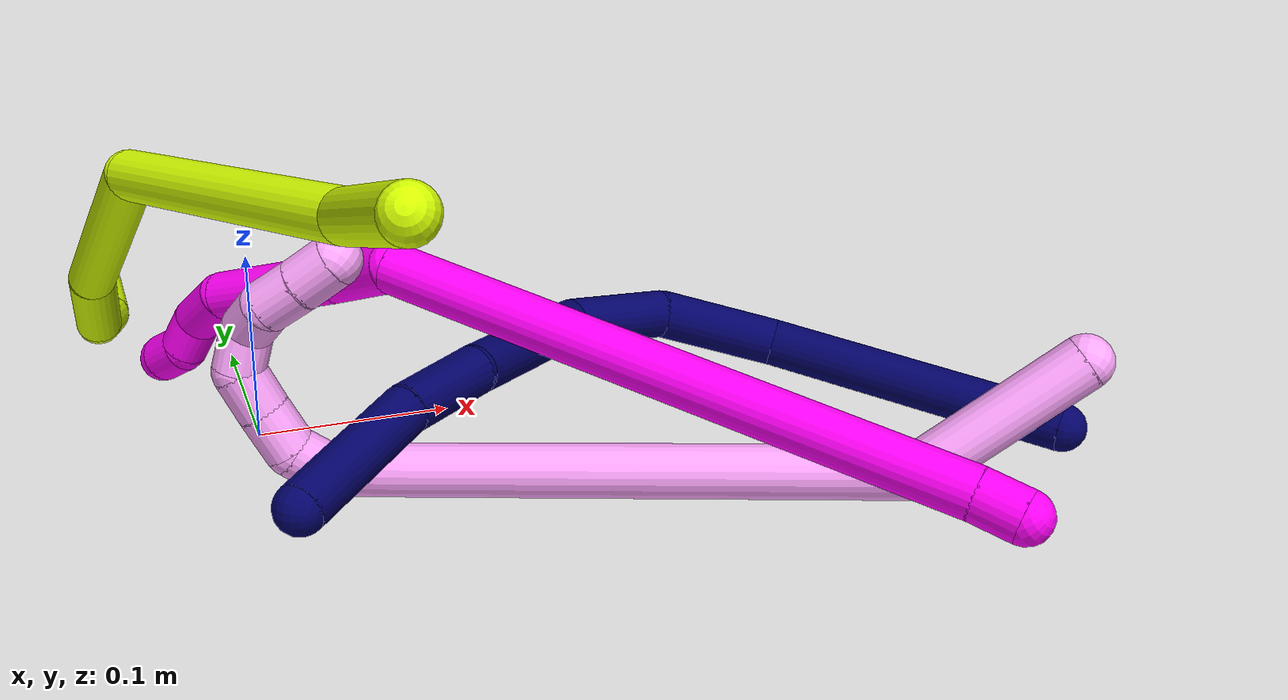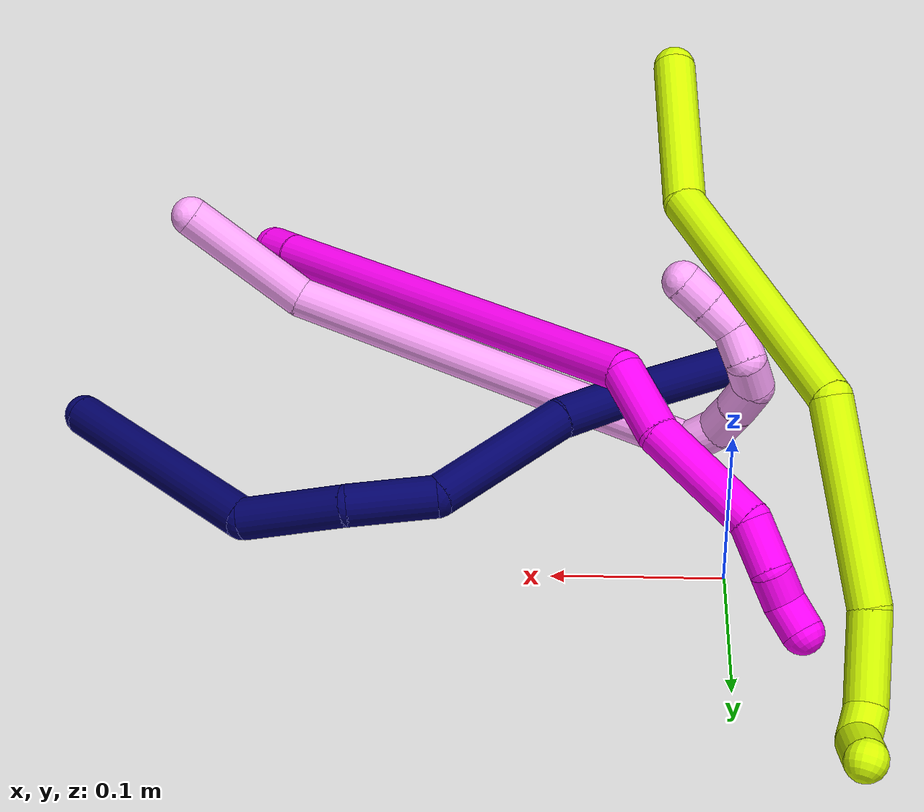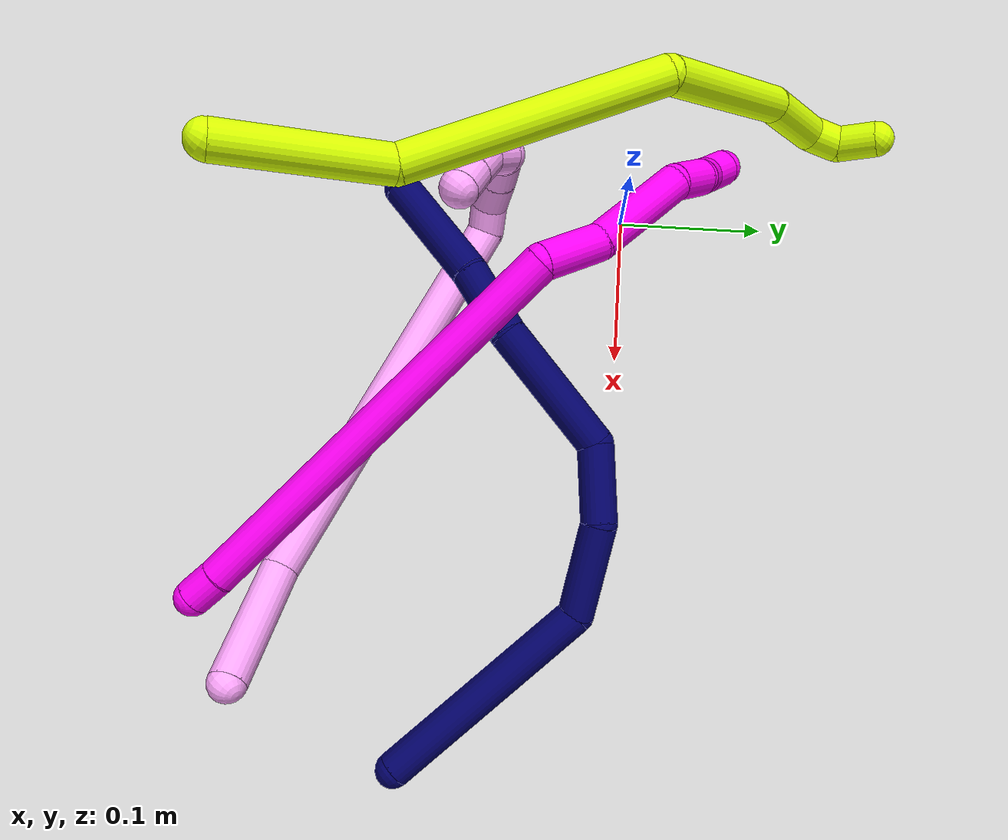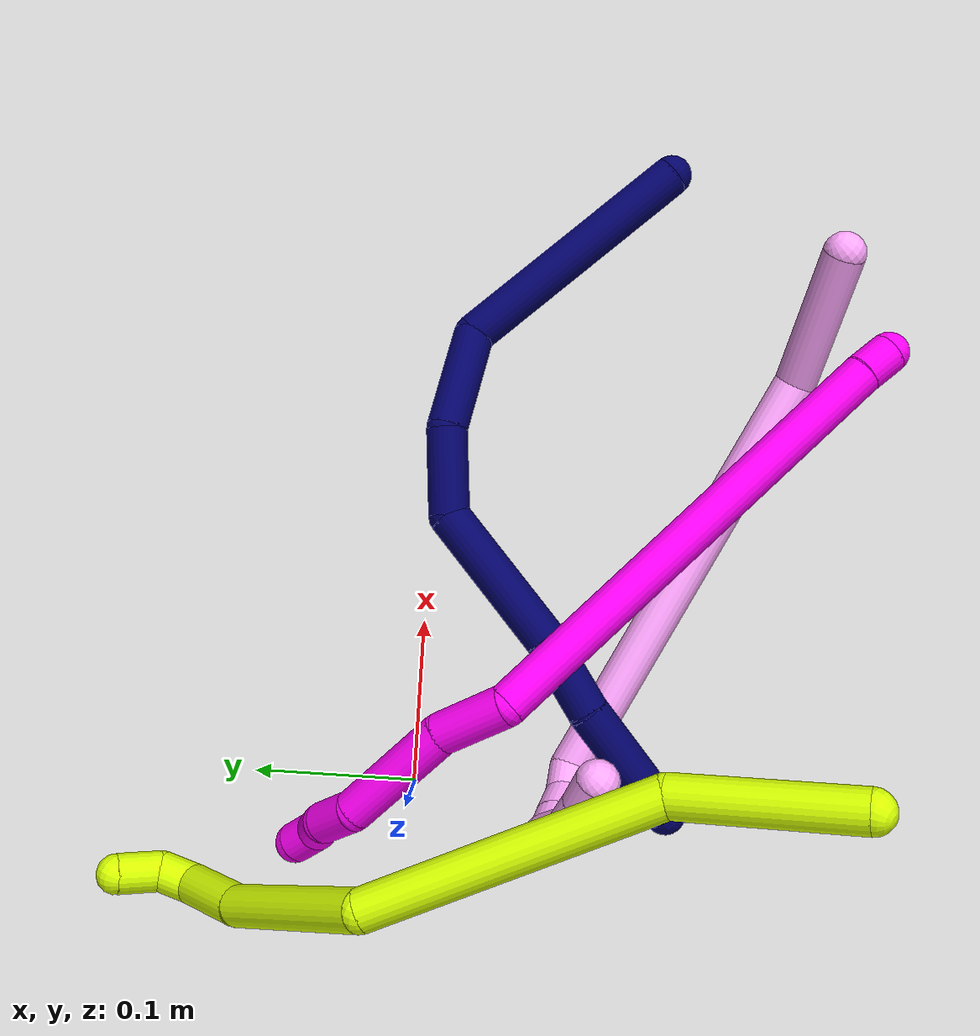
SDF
<sdf version="1.7">
 <world name="default">
  <model name="photoneo_s_sensor">
   <static>1</static>
   <pose>0 0 2 1.57079 1.57079 3.14159</pose>
   <link name="link">
    <inertial><mass>0.1</mass></inertial>
    <sensor name="sensor" type="depth">
     <update_rate>30</update_rate>
     <camera>
      <horizontal_fov>1.22</horizontal_fov>
      <image><width>1920</width><height>1200</height><format>B8G8R8</format></image>
      <clip><near>0.1</near><far>4</far></clip>
      <depth_camera><output>points</output></depth_camera>
     </camera>
     <plugin name="camera_plugin" filename="libgazebo_ros_depth_camera.so">
      <baseline>0.2</baseline>
      <alwaysOn>1</alwaysOn>
      <updateRate>0.0</updateRate>
      <cameraName>camera_ir</cameraName>
      <imageTopicName>/camera/color/image_raw</imageTopicName>
      <cameraInfoTopicName>/camera/color/camera_info</cameraInfoTopicName>
      <depthImageTopicName>/camera/depth/image_raw</depthImageTopicName>
      <depthImageCameraInfoTopicName>/camera/depth/camera_info</depthImageCameraInfoTopicName>
      <pointCloudTopicName>/camera/depth/points</pointCloudTopicName>
      <frameName>fr_optical</frameName>
      <pointCloudCutoff>0.1</pointCloudCutoff>
      <pointCloudCutoffMax>2.0</pointCloudCutoffMax>
      <distortionK1>0</distortionK1>
      <distortionK2>0</distortionK2>
      <distortionK3>0</distortionK3>
      <distortionT1>0</distortionT1>
      <distortionT2>0</distortionT2>
      <CxPrime>0</CxPrime>
      <Cx>0</Cx>
      <Cy>0</Cy>
      <focalLength>0</focalLength>
      <hackBaseline>0</hackBaseline>
     </plugin>
    </sensor>
   </link>
  </model>
  <model name="bin">
   <static>1</static>
   <link name="bottom">
    <collision name="collision-bottom">
     <pose>0 0 -0.01 0 -0 0</pose>
     <geometry><box><size>0.8 0.6 0.02</size></box></geometry>
     <surface>
      <friction><ode><mu>100</mu><mu2>100</mu2></ode></friction>
      <contact><collide_bitmask>65535</collide_bitmask></contact>
     </surface>
    </collision>
   </link>
   <link name="west_wall">
    <collision name="collision-west_wall">
     <pose>-0.41 0 0.1 0 -0 0</pose>
     <geometry><box><size>0.02 0.6 0.2</size></box></geometry>
     <surface>
      <friction><ode><mu>100</mu><mu2>100</mu2></ode></friction>
      <contact><collide_bitmask>65535</collide_bitmask></contact>
     </surface>
    </collision>
   </link>
   <link name="east_wall">
    <collision name="collision-east_wall">
     <pose>0.41 0 0.1 0 -0 0</pose>
     <geometry><box><size>0.02 0.6 0.2</size></box></geometry>
     <surface>
      <friction><ode><mu>100</mu><mu2>100</mu2></ode></friction>
      <contact><collide_bitmask>65535</collide_bitmask></contact>
     </surface>
    </collision>
   </link>
   <link name="south_wall">
    <collision name="collision-south_wall">
     <pose>0 -0.31 0.1 0 -0 0</pose>
     <geometry><box><size>0.8 0.02 0.2</size></box></geometry>
     <surface>
      <friction><ode><mu>100</mu><mu2>100</mu2></ode></friction>
      <contact><collide_bitmask>65535</collide_bitmask></contact>
     </surface>
    </collision>
   </link>
   <link name="north_wall">
    <collision name="collision-north_wall">
     <pose>0 0.31 0.1 0 -0 0</pose>
     <geometry><box><size>0.8 0.02 0.2</size></box></geometry>
     <surface>
      <friction><ode><mu>100</mu><mu2>100</mu2></ode></friction>
      <contact><collide_bitmask>65535</collide_bitmask></contact>
     </surface>
    </collision>
   </link>
  </model>
  <model name="4">
   <static>0</static>
   <link name="4">
    <collision name="collision-cylinder-e_1_1_4">
     <pose>-0.004775 0.033525 -0.026576 -2.24107 -0.111151 0.229174</pose>
     <geometry><cylinder><radius>0.0125</radius><length>0.086093</length></cylinder></geometry>
     <surface>
      <friction><ode><mu>1.16</mu><mu2>1.16</mu2><slip1>0</slip1><slip2>0</slip2></ode></friction>
      <contact><ode><kp>1e+06</kp><kd>1</kd><max_vel>0</max_vel><min_depth>0.001</min_depth></ode></contact>
     </surface>
    </collision>
    <visual name="visual-cylinder-e_1_1_4">
     <pose>-0.004775 0.033525 -0.026576 -2.24107 -0.111151 0.229174</pose>
     <geometry><cylinder><radius>0.0125</radius><length>0.086093</length></cylinder></geometry>
     <material><ambient>1 0.65098 0.996078 1</ambient></material>
    </visual>
    <collision name="collision-cylinder-e_2_4_5">
     <pose>-0.085385 0.172377 -0.087226 -1.88369 -0.600622 0.804871</pose>
     <geometry><cylinder><radius>0.0125</radius><length>0.268371</length></cylinder></geometry>
     <surface>
      <friction><ode><mu>1.16</mu><mu2>1.16</mu2><slip1>0</slip1><slip2>0</slip2></ode></friction>
      <contact><ode><kp>1e+06</kp><kd>1</kd><max_vel>0</max_vel><min_depth>0.001</min_depth></ode></contact>
     </surface>
    </collision>
    <visual name="visual-cylinder-e_2_4_5">
     <pose>-0.085385 0.172377 -0.087226 -1.88369 -0.600622 0.804871</pose>
     <geometry><cylinder><radius>0.0125</radius><length>0.268371</length></cylinder></geometry>
     <material><ambient>1 0.65098 0.996078 1</ambient></material>
    </visual>
    <collision name="collision-cylinder-e_3_5_6">
     <pose>-0.171091 0.279448 -0.122405 -2.13455 -1.36452 1.94986</pose>
     <geometry><cylinder><radius>0.0125</radius><length>0.020167</length></cylinder></geometry>
     <surface>
      <friction><ode><mu>1.16</mu><mu2>1.16</mu2><slip1>0</slip1><slip2>0</slip2></ode></friction>
      <contact><ode><kp>1e+06</kp><kd>1</kd><max_vel>0</max_vel><min_depth>0.001</min_depth></ode></contact>
     </surface>
    </collision>
    <visual name="visual-cylinder-e_3_5_6">
     <pose>-0.171091 0.279448 -0.122405 -2.13455 -1.36452 1.94986</pose>
     <geometry><cylinder><radius>0.0125</radius><length>0.020167</length></cylinder></geometry>
     <material><ambient>1 0.65098 0.996078 1</ambient></material>
    </visual>
    <collision name="collision-cylinder-e_4_6_7">
     <pose>-0.191858 0.281121 -0.120037 0.021175 -1.26235 -0.015478</pose>
     <geometry><cylinder><radius>0.0125</radius><length>0.022875</length></cylinder></geometry>
     <surface>
      <friction><ode><mu>1.16</mu><mu2>1.16</mu2><slip1>0</slip1><slip2>0</slip2></ode></friction>
      <contact><ode><kp>1e+06</kp><kd>1</kd><max_vel>0</max_vel><min_depth>0.001</min_depth></ode></contact>
     </surface>
    </collision>
    <visual name="visual-cylinder-e_4_6_7">
     <pose>-0.191858 0.281121 -0.120037 0.021175 -1.26235 -0.015478</pose>
     <geometry><cylinder><radius>0.0125</radius><length>0.022875</length></cylinder></geometry>
     <material><ambient>1 0.65098 0.996078 1</ambient></material>
    </visual>
    <collision name="collision-cylinder-e_5_7_8">
     <pose>-0.213172 0.280173 -0.113319 0.26307 -1.25856 -0.192039</pose>
     <geometry><cylinder><radius>0.0125</radius><length>0.021891</length></cylinder></geometry>
     <surface>
      <friction><ode><mu>1.16</mu><mu2>1.16</mu2><slip1>0</slip1><slip2>0</slip2></ode></friction>
      <contact><ode><kp>1e+06</kp><kd>1</kd><max_vel>0</max_vel><min_depth>0.001</min_depth></ode></contact>
     </surface>
    </collision>
    <visual name="visual-cylinder-e_5_7_8">
     <pose>-0.213172 0.280173 -0.113319 0.26307 -1.25856 -0.192039</pose>
     <geometry><cylinder><radius>0.0125</radius><length>0.021891</length></cylinder></geometry>
     <material><ambient>1 0.65098 0.996078 1</ambient></material>
    </visual>
    <collision name="collision-cylinder-e_6_8_9">
     <pose>-0.228829 0.274072 -0.103312 0.658063 -0.550118 -0.192126</pose>
     <geometry><cylinder><radius>0.0125</radius><length>0.020047</length></cylinder></geometry>
     <surface>
      <friction><ode><mu>1.16</mu><mu2>1.16</mu2><slip1>0</slip1><slip2>0</slip2></ode></friction>
      <contact><ode><kp>1e+06</kp><kd>1</kd><max_vel>0</max_vel><min_depth>0.001</min_depth></ode></contact>
     </surface>
    </collision>
    <visual name="visual-cylinder-e_6_8_9">
     <pose>-0.228829 0.274072 -0.103312 0.658063 -0.550118 -0.192126</pose>
     <geometry><cylinder><radius>0.0125</radius><length>0.020047</length></cylinder></geometry>
     <material><ambient>1 0.65098 0.996078 1</ambient></material>
    </visual>
    <collision name="collision-cylinder-e_7_9_10">
     <pose>-0.236751 0.259312 -0.094807 1.3898 -0.269882 -0.225392</pose>
     <geometry><cylinder><radius>0.0125</radius><length>0.020115</length></cylinder></geometry>
     <surface>
      <friction><ode><mu>1.16</mu><mu2>1.16</mu2><slip1>0</slip1><slip2>0</slip2></ode></friction>
      <contact><ode><kp>1e+06</kp><kd>1</kd><max_vel>0</max_vel><min_depth>0.001</min_depth></ode></contact>
     </surface>
    </collision>
    <visual name="visual-cylinder-e_7_9_10">
     <pose>-0.236751 0.259312 -0.094807 1.3898 -0.269882 -0.225392</pose>
     <geometry><cylinder><radius>0.0125</radius><length>0.020115</length></cylinder></geometry>
     <material><ambient>1 0.65098 0.996078 1</ambient></material>
    </visual>
    <collision name="collision-cylinder-e_8_10_11">
     <pose>-0.238579 0.240911 -0.088483 1.09404 0.085311 0.051976</pose>
     <geometry><cylinder><radius>0.0125</radius><length>0.020029</length></cylinder></geometry>
     <surface>
      <friction><ode><mu>1.16</mu><mu2>1.16</mu2><slip1>0</slip1><slip2>0</slip2></ode></friction>
      <contact><ode><kp>1e+06</kp><kd>1</kd><max_vel>0</max_vel><min_depth>0.001</min_depth></ode></contact>
     </surface>
    </collision>
    <visual name="visual-cylinder-e_8_10_11">
     <pose>-0.238579 0.240911 -0.088483 1.09404 0.085311 0.051976</pose>
     <geometry><cylinder><radius>0.0125</radius><length>0.020029</length></cylinder></geometry>
     <material><ambient>1 0.65098 0.996078 1</ambient></material>
    </visual>
    <collision name="collision-cylinder-e_9_11_2">
     <pose>-0.236995 0.223281 -0.078727 1.03724 0.071682 0.040923</pose>
     <geometry><cylinder><radius>0.0125</radius><length>0.020412</length></cylinder></geometry>
     <surface>
      <friction><ode><mu>1.16</mu><mu2>1.16</mu2><slip1>0</slip1><slip2>0</slip2></ode></friction>
      <contact><ode><kp>1e+06</kp><kd>1</kd><max_vel>0</max_vel><min_depth>0.001</min_depth></ode></contact>
     </surface>
    </collision>
    <visual name="visual-cylinder-e_9_11_2">
     <pose>-0.236995 0.223281 -0.078727 1.03724 0.071682 0.040923</pose>
     <geometry><cylinder><radius>0.0125</radius><length>0.020412</length></cylinder></geometry>
     <material><ambient>1 0.65098 0.996078 1</ambient></material>
    </visual>
    <collision name="collision-sphere-2">
     <pose>-0.236264 0.214516 -0.07355 0 -0 0</pose>
     <geometry><sphere><radius>0.0125</radius></sphere></geometry>
     <surface>
      <friction><ode><mu>1.16</mu><mu2>1.16</mu2><slip1>0</slip1><slip2>0</slip2></ode></friction>
      <contact><ode><kp>1e+06</kp><kd>1</kd><max_vel>0</max_vel><min_depth>0.001</min_depth></ode></contact>
     </surface>
    </collision>
    <visual name="visual-sphere-2">
     <pose>-0.236264 0.214516 -0.07355 0 -0 0</pose>
     <geometry><sphere><radius>0.0125</radius></sphere></geometry>
     <material><ambient>1 0.65098 0.996078 1</ambient></material>
    </visual>
    <collision name="collision-sphere-11">
     <pose>-0.237725 0.232046 -0.083905 0 -0 0</pose>
     <geometry><sphere><radius>0.0125</radius></sphere></geometry>
     <surface>
      <friction><ode><mu>1.16</mu><mu2>1.16</mu2><slip1>0</slip1><slip2>0</slip2></ode></friction>
      <contact><ode><kp>1e+06</kp><kd>1</kd><max_vel>0</max_vel><min_depth>0.001</min_depth></ode></contact>
     </surface>
    </collision>
    <visual name="visual-sphere-11">
     <pose>-0.237725 0.232046 -0.083905 0 -0 0</pose>
     <geometry><sphere><radius>0.0125</radius></sphere></geometry>
     <material><ambient>1 0.65098 0.996078 1</ambient></material>
    </visual>
    <collision name="collision-sphere-10">
     <pose>-0.239432 0.249777 -0.093062 0 -0 0</pose>
     <geometry><sphere><radius>0.0125</radius></sphere></geometry>
     <surface>
      <friction><ode><mu>1.16</mu><mu2>1.16</mu2><slip1>0</slip1><slip2>0</slip2></ode></friction>
      <contact><ode><kp>1e+06</kp><kd>1</kd><max_vel>0</max_vel><min_depth>0.001</min_depth></ode></contact>
     </surface>
    </collision>
    <visual name="visual-sphere-10">
     <pose>-0.239432 0.249777 -0.093062 0 -0 0</pose>
     <geometry><sphere><radius>0.0125</radius></sphere></geometry>
     <material><ambient>1 0.65098 0.996078 1</ambient></material>
    </visual>
    <collision name="collision-sphere-9">
     <pose>-0.234069 0.268847 -0.096552 0 -0 0</pose>
     <geometry><sphere><radius>0.0125</radius></sphere></geometry>
     <surface>
      <friction><ode><mu>1.16</mu><mu2>1.16</mu2><slip1>0</slip1><slip2>0</slip2></ode></friction>
      <contact><ode><kp>1e+06</kp><kd>1</kd><max_vel>0</max_vel><min_depth>0.001</min_depth></ode></contact>
     </surface>
    </collision>
    <visual name="visual-sphere-9">
     <pose>-0.234069 0.268847 -0.096552 0 -0 0</pose>
     <geometry><sphere><radius>0.0125</radius></sphere></geometry>
     <material><ambient>1 0.65098 0.996078 1</ambient></material>
    </visual>
    <collision name="collision-sphere-4">
     <pose>-0.00955 0.067051 -0.053151 0 -0 0</pose>
     <geometry><sphere><radius>0.0125</radius></sphere></geometry>
     <surface>
      <friction><ode><mu>1.16</mu><mu2>1.16</mu2><slip1>0</slip1><slip2>0</slip2></ode></friction>
      <contact><ode><kp>1e+06</kp><kd>1</kd><max_vel>0</max_vel><min_depth>0.001</min_depth></ode></contact>
     </surface>
    </collision>
    <visual name="visual-sphere-4">
     <pose>-0.00955 0.067051 -0.053151 0 -0 0</pose>
     <geometry><sphere><radius>0.0125</radius></sphere></geometry>
     <material><ambient>1 0.65098 0.996078 1</ambient></material>
    </visual>
    <collision name="collision-sphere-1">
     <geometry><sphere><radius>0.0125</radius></sphere></geometry>
     <surface>
      <friction><ode><mu>1.16</mu><mu2>1.16</mu2><slip1>0</slip1><slip2>0</slip2></ode></friction>
      <contact><ode><kp>1e+06</kp><kd>1</kd><max_vel>0</max_vel><min_depth>0.001</min_depth></ode></contact>
     </surface>
    </collision>
    <visual name="visual-sphere-1">
     <geometry><sphere><radius>0.0125</radius></sphere></geometry>
     <material><ambient>1 0.65098 0.996078 1</ambient></material>
    </visual>
    <collision name="collision-sphere-8">
     <pose>-0.223589 0.279298 -0.110073 0 -0 0</pose>
     <geometry><sphere><radius>0.0125</radius></sphere></geometry>
     <surface>
      <friction><ode><mu>1.16</mu><mu2>1.16</mu2><slip1>0</slip1><slip2>0</slip2></ode></friction>
      <contact><ode><kp>1e+06</kp><kd>1</kd><max_vel>0</max_vel><min_depth>0.001</min_depth></ode></contact>
     </surface>
    </collision>
    <visual name="visual-sphere-8">
     <pose>-0.223589 0.279298 -0.110073 0 -0 0</pose>
     <geometry><sphere><radius>0.0125</radius></sphere></geometry>
     <material><ambient>1 0.65098 0.996078 1</ambient></material>
    </visual>
    <collision name="collision-sphere-5">
     <pose>-0.161221 0.277703 -0.121302 0 -0 0</pose>
     <geometry><sphere><radius>0.0125</radius></sphere></geometry>
     <surface>
      <friction><ode><mu>1.16</mu><mu2>1.16</mu2><slip1>0</slip1><slip2>0</slip2></ode></friction>
      <contact><ode><kp>1e+06</kp><kd>1</kd><max_vel>0</max_vel><min_depth>0.001</min_depth></ode></contact>
     </surface>
    </collision>
    <visual name="visual-sphere-5">
     <pose>-0.161221 0.277703 -0.121302 0 -0 0</pose>
     <geometry><sphere><radius>0.0125</radius></sphere></geometry>
     <material><ambient>1 0.65098 0.996078 1</ambient></material>
    </visual>
    <collision name="collision-sphere-6">
     <pose>-0.180961 0.281194 -0.123509 0 -0 0</pose>
     <geometry><sphere><radius>0.0125</radius></sphere></geometry>
     <surface>
      <friction><ode><mu>1.16</mu><mu2>1.16</mu2><slip1>0</slip1><slip2>0</slip2></ode></friction>
      <contact><ode><kp>1e+06</kp><kd>1</kd><max_vel>0</max_vel><min_depth>0.001</min_depth></ode></contact>
     </surface>
    </collision>
    <visual name="visual-sphere-6">
     <pose>-0.180961 0.281194 -0.123509 0 -0 0</pose>
     <geometry><sphere><radius>0.0125</radius></sphere></geometry>
     <material><ambient>1 0.65098 0.996078 1</ambient></material>
    </visual>
    <collision name="collision-sphere-7">
     <pose>-0.202756 0.281047 -0.116566 0 -0 0</pose>
     <geometry><sphere><radius>0.0125</radius></sphere></geometry>
     <surface>
      <friction><ode><mu>1.16</mu><mu2>1.16</mu2><slip1>0</slip1><slip2>0</slip2></ode></friction>
      <contact><ode><kp>1e+06</kp><kd>1</kd><max_vel>0</max_vel><min_depth>0.001</min_depth></ode></contact>
     </surface>
    </collision>
    <visual name="visual-sphere-7">
     <pose>-0.202756 0.281047 -0.116566 0 -0 0</pose>
     <geometry><sphere><radius>0.0125</radius></sphere></geometry>
     <material><ambient>1 0.65098 0.996078 1</ambient></material>
    </visual>
    <inertial>
     <pose>-0.109595 0.17488 -0.081499 0 -0 0</pose>
     <mass>0.5</mass>
     <inertia>
      <ixx>0.001946</ixx>
      <ixy>0</ixy>
      <ixz>0</ixz>
      <iyy>0.001251</iyy>
      <iyz>0</iyz>
      <izz>-0.000389</izz>
     </inertia>
    </inertial>
   </link>
   <pose>0.326947 -0.227912 0.100222 -0.818842 0.835628 -0.100466</pose>
  </model>
  <model name="7">
   <static>0</static>
   <link name="7">
    <collision name="collision-cylinder-e_1_1_4">
     <pose>-0.004893 0.006458 -0.079387 -3.06042 -0.06136 1.29437</pose>
     <geometry><cylinder><radius>0.0125</radius><length>0.159599</length></cylinder></geometry>
     <surface>
      <friction><ode><mu>1.16</mu><mu2>1.16</mu2><slip1>0</slip1><slip2>0</slip2></ode></friction>
      <contact><ode><kp>1e+06</kp><kd>1</kd><max_vel>0</max_vel><min_depth>0.001</min_depth></ode></contact>
     </surface>
    </collision>
    <visual name="visual-cylinder-e_1_1_4">
     <pose>-0.004893 0.006458 -0.079387 -3.06042 -0.06136 1.29437</pose>
     <geometry><cylinder><radius>0.0125</radius><length>0.159599</length></cylinder></geometry>
     <material><ambient>0.003922 0 0.403922 1</ambient></material>
    </visual>
    <collision name="collision-cylinder-e_2_4_5">
     <pose>-0.030837 0.010778 -0.18361 3.05572 -0.701262 -2.90773</pose>
     <geometry><cylinder><radius>0.0125</radius><length>0.065253</length></cylinder></geometry>
     <surface>
      <friction><ode><mu>1.16</mu><mu2>1.16</mu2><slip1>0</slip1><slip2>0</slip2></ode></friction>
      <contact><ode><kp>1e+06</kp><kd>1</kd><max_vel>0</max_vel><min_depth>0.001</min_depth></ode></contact>
     </surface>
    </collision>
    <visual name="visual-cylinder-e_2_4_5">
     <pose>-0.030837 0.010778 -0.18361 3.05572 -0.701262 -2.90773</pose>
     <geometry><cylinder><radius>0.0125</radius><length>0.065253</length></cylinder></geometry>
     <material><ambient>0.003922 0 0.403922 1</ambient></material>
    </visual>
    <collision name="collision-cylinder-e_3_5_6">
     <pose>-0.070132 -0.001814 -0.224445 2.56282 -0.762209 -1.86349</pose>
     <geometry><cylinder><radius>0.0125</radius><length>0.052845</length></cylinder></geometry>
     <surface>
      <friction><ode><mu>1.16</mu><mu2>1.16</mu2><slip1>0</slip1><slip2>0</slip2></ode></friction>
      <contact><ode><kp>1e+06</kp><kd>1</kd><max_vel>0</max_vel><min_depth>0.001</min_depth></ode></contact>
     </surface>
    </collision>
    <visual name="visual-cylinder-e_3_5_6">
     <pose>-0.070132 -0.001814 -0.224445 2.56282 -0.762209 -1.86349</pose>
     <geometry><cylinder><radius>0.0125</radius><length>0.052845</length></cylinder></geometry>
     <material><ambient>0.003922 0 0.403922 1</ambient></material>
    </visual>
    <collision name="collision-cylinder-e_4_6_7">
     <pose>-0.129335 -0.035337 -0.24126 1.60616 -1.05758 -1.08866</pose>
     <geometry><cylinder><radius>0.0125</radius><length>0.09403</length></cylinder></geometry>
     <surface>
      <friction><ode><mu>1.16</mu><mu2>1.16</mu2><slip1>0</slip1><slip2>0</slip2></ode></friction>
      <contact><ode><kp>1e+06</kp><kd>1</kd><max_vel>0</max_vel><min_depth>0.001</min_depth></ode></contact>
     </surface>
    </collision>
    <visual name="visual-cylinder-e_4_6_7">
     <pose>-0.129335 -0.035337 -0.24126 1.60616 -1.05758 -1.08866</pose>
     <geometry><cylinder><radius>0.0125</radius><length>0.09403</length></cylinder></geometry>
     <material><ambient>0.003922 0 0.403922 1</ambient></material>
    </visual>
    <collision name="collision-cylinder-e_5_7_8">
     <pose>-0.189476 -0.073311 -0.245822 1.81705 -0.895342 -1.10394</pose>
     <geometry><cylinder><radius>0.0125</radius><length>0.049159</length></cylinder></geometry>
     <surface>
      <friction><ode><mu>1.16</mu><mu2>1.16</mu2><slip1>0</slip1><slip2>0</slip2></ode></friction>
      <contact><ode><kp>1e+06</kp><kd>1</kd><max_vel>0</max_vel><min_depth>0.001</min_depth></ode></contact>
     </surface>
    </collision>
    <visual name="visual-cylinder-e_5_7_8">
     <pose>-0.189476 -0.073311 -0.245822 1.81705 -0.895342 -1.10394</pose>
     <geometry><cylinder><radius>0.0125</radius><length>0.049159</length></cylinder></geometry>
     <material><ambient>0.003922 0 0.403922 1</ambient></material>
    </visual>
    <collision name="collision-cylinder-e_6_8_2">
     <pose>-0.235846 -0.116886 -0.251466 1.63687 -0.757751 -0.804291</pose>
     <geometry><cylinder><radius>0.0125</radius><length>0.079114</length></cylinder></geometry>
     <surface>
      <friction><ode><mu>1.16</mu><mu2>1.16</mu2><slip1>0</slip1><slip2>0</slip2></ode></friction>
      <contact><ode><kp>1e+06</kp><kd>1</kd><max_vel>0</max_vel><min_depth>0.001</min_depth></ode></contact>
     </surface>
    </collision>
    <visual name="visual-cylinder-e_6_8_2">
     <pose>-0.235846 -0.116886 -0.251466 1.63687 -0.757751 -0.804291</pose>
     <geometry><cylinder><radius>0.0125</radius><length>0.079114</length></cylinder></geometry>
     <material><ambient>0.003922 0 0.403922 1</ambient></material>
    </visual>
    <collision name="collision-sphere-2">
     <pose>-0.263033 -0.145557 -0.253363 0 -0 0</pose>
     <geometry><sphere><radius>0.0125</radius></sphere></geometry>
     <surface>
      <friction><ode><mu>1.16</mu><mu2>1.16</mu2><slip1>0</slip1><slip2>0</slip2></ode></friction>
      <contact><ode><kp>1e+06</kp><kd>1</kd><max_vel>0</max_vel><min_depth>0.001</min_depth></ode></contact>
     </surface>
    </collision>
    <visual name="visual-sphere-2">
     <pose>-0.263033 -0.145557 -0.253363 0 -0 0</pose>
     <geometry><sphere><radius>0.0125</radius></sphere></geometry>
     <material><ambient>0.003922 0 0.403922 1</ambient></material>
    </visual>
    <collision name="collision-sphere-4">
     <pose>-0.009787 0.012916 -0.158774 0 -0 0</pose>
     <geometry><sphere><radius>0.0125</radius></sphere></geometry>
     <surface>
      <friction><ode><mu>1.16</mu><mu2>1.16</mu2><slip1>0</slip1><slip2>0</slip2></ode></friction>
      <contact><ode><kp>1e+06</kp><kd>1</kd><max_vel>0</max_vel><min_depth>0.001</min_depth></ode></contact>
     </surface>
    </collision>
    <visual name="visual-sphere-4">
     <pose>-0.009787 0.012916 -0.158774 0 -0 0</pose>
     <geometry><sphere><radius>0.0125</radius></sphere></geometry>
     <material><ambient>0.003922 0 0.403922 1</ambient></material>
    </visual>
    <collision name="collision-sphere-1">
     <geometry><sphere><radius>0.0125</radius></sphere></geometry>
     <surface>
      <friction><ode><mu>1.16</mu><mu2>1.16</mu2><slip1>0</slip1><slip2>0</slip2></ode></friction>
      <contact><ode><kp>1e+06</kp><kd>1</kd><max_vel>0</max_vel><min_depth>0.001</min_depth></ode></contact>
     </surface>
    </collision>
    <visual name="visual-sphere-1">
     <geometry><sphere><radius>0.0125</radius></sphere></geometry>
     <material><ambient>0.003922 0 0.403922 1</ambient></material>
    </visual>
    <collision name="collision-sphere-8">
     <pose>-0.208658 -0.088215 -0.249569 0 -0 0</pose>
     <geometry><sphere><radius>0.0125</radius></sphere></geometry>
     <surface>
      <friction><ode><mu>1.16</mu><mu2>1.16</mu2><slip1>0</slip1><slip2>0</slip2></ode></friction>
      <contact><ode><kp>1e+06</kp><kd>1</kd><max_vel>0</max_vel><min_depth>0.001</min_depth></ode></contact>
     </surface>
    </collision>
    <visual name="visual-sphere-8">
     <pose>-0.208658 -0.088215 -0.249569 0 -0 0</pose>
     <geometry><sphere><radius>0.0125</radius></sphere></geometry>
     <material><ambient>0.003922 0 0.403922 1</ambient></material>
    </visual>
    <collision name="collision-sphere-5">
     <pose>-0.051887 0.00864 -0.208445 0 -0 0</pose>
     <geometry><sphere><radius>0.0125</radius></sphere></geometry>
     <surface>
      <friction><ode><mu>1.16</mu><mu2>1.16</mu2><slip1>0</slip1><slip2>0</slip2></ode></friction>
      <contact><ode><kp>1e+06</kp><kd>1</kd><max_vel>0</max_vel><min_depth>0.001</min_depth></ode></contact>
     </surface>
    </collision>
    <visual name="visual-sphere-5">
     <pose>-0.051887 0.00864 -0.208445 0 -0 0</pose>
     <geometry><sphere><radius>0.0125</radius></sphere></geometry>
     <material><ambient>0.003922 0 0.403922 1</ambient></material>
    </visual>
    <collision name="collision-sphere-6">
     <pose>-0.088377 -0.012268 -0.240444 0 -0 0</pose>
     <geometry><sphere><radius>0.0125</radius></sphere></geometry>
     <surface>
      <friction><ode><mu>1.16</mu><mu2>1.16</mu2><slip1>0</slip1><slip2>0</slip2></ode></friction>
      <contact><ode><kp>1e+06</kp><kd>1</kd><max_vel>0</max_vel><min_depth>0.001</min_depth></ode></contact>
     </surface>
    </collision>
    <visual name="visual-sphere-6">
     <pose>-0.088377 -0.012268 -0.240444 0 -0 0</pose>
     <geometry><sphere><radius>0.0125</radius></sphere></geometry>
     <material><ambient>0.003922 0 0.403922 1</ambient></material>
    </visual>
    <collision name="collision-sphere-7">
     <pose>-0.170293 -0.058406 -0.242076 0 -0 0</pose>
     <geometry><sphere><radius>0.0125</radius></sphere></geometry>
     <surface>
      <friction><ode><mu>1.16</mu><mu2>1.16</mu2><slip1>0</slip1><slip2>0</slip2></ode></friction>
      <contact><ode><kp>1e+06</kp><kd>1</kd><max_vel>0</max_vel><min_depth>0.001</min_depth></ode></contact>
     </surface>
    </collision>
    <visual name="visual-sphere-7">
     <pose>-0.170293 -0.058406 -0.242076 0 -0 0</pose>
     <geometry><sphere><radius>0.0125</radius></sphere></geometry>
     <material><ambient>0.003922 0 0.403922 1</ambient></material>
    </visual>
    <inertial>
     <pose>-0.093268 -0.029072 -0.182353 0 -0 0</pose>
     <mass>0.5</mass>
     <inertia>
      <ixx>0.000349</ixx>
      <ixy>0</ixy>
      <ixz>0</ixz>
      <iyy>0.000267</iyy>
      <iyz>0</iyz>
      <izz>0.000186</izz>
     </inertia>
    </inertial>
   </link>
   <pose>0.387655 -0.136277 0.011559 1.53006 0.641423 0.724694</pose>
  </model>
  <model name="10">
   <static>0</static>
   <link name="10">
    <collision name="collision-cylinder-e_1_1_4">
     <pose>-0.004528 0.006545 -0.007478 -2.42261 -0.427503 1.04755</pose>
     <geometry><cylinder><radius>0.0125</radius><length>0.021842</length></cylinder></geometry>
     <surface>
      <friction><ode><mu>1.16</mu><mu2>1.16</mu2><slip1>0</slip1><slip2>0</slip2></ode></friction>
      <contact><ode><kp>1e+06</kp><kd>1</kd><max_vel>0</max_vel><min_depth>0.001</min_depth></ode></contact>
     </surface>
    </collision>
    <visual name="visual-cylinder-e_1_1_4">
     <pose>-0.004528 0.006545 -0.007478 -2.42261 -0.427503 1.04755</pose>
     <geometry><cylinder><radius>0.0125</radius><length>0.021842</length></cylinder></geometry>
     <material><ambient>1 0 0.964706 1</ambient></material>
    </visual>
    <collision name="collision-cylinder-e_2_4_5">
     <pose>-0.075175 0.089849 -0.117795 -2.5004 -0.475772 1.26147</pose>
     <geometry><cylinder><radius>0.0125</radius><length>0.288717</length></cylinder></geometry>
     <surface>
      <friction><ode><mu>1.16</mu><mu2>1.16</mu2><slip1>0</slip1><slip2>0</slip2></ode></friction>
      <contact><ode><kp>1e+06</kp><kd>1</kd><max_vel>0</max_vel><min_depth>0.001</min_depth></ode></contact>
     </surface>
    </collision>
    <visual name="visual-cylinder-e_2_4_5">
     <pose>-0.075175 0.089849 -0.117795 -2.5004 -0.475772 1.26147</pose>
     <geometry><cylinder><radius>0.0125</radius><length>0.288717</length></cylinder></geometry>
     <material><ambient>1 0 0.964706 1</ambient></material>
    </visual>
    <collision name="collision-cylinder-e_3_5_6">
     <pose>-0.140295 0.172003 -0.242431 -2.89892 0.044519 -0.361175</pose>
     <geometry><cylinder><radius>0.0125</radius><length>0.044955</length></cylinder></geometry>
     <surface>
      <friction><ode><mu>1.16</mu><mu2>1.16</mu2><slip1>0</slip1><slip2>0</slip2></ode></friction>
      <contact><ode><kp>1e+06</kp><kd>1</kd><max_vel>0</max_vel><min_depth>0.001</min_depth></ode></contact>
     </surface>
    </collision>
    <visual name="visual-cylinder-e_3_5_6">
     <pose>-0.140295 0.172003 -0.242431 -2.89892 0.044519 -0.361175</pose>
     <geometry><cylinder><radius>0.0125</radius><length>0.044955</length></cylinder></geometry>
     <material><ambient>1 0 0.964706 1</ambient></material>
    </visual>
    <collision name="collision-cylinder-e_4_6_7">
     <pose>-0.147924 0.183848 -0.299697 -2.96174 -0.234956 1.83679</pose>
     <geometry><cylinder><radius>0.0125</radius><length>0.074138</length></cylinder></geometry>
     <surface>
      <friction><ode><mu>1.16</mu><mu2>1.16</mu2><slip1>0</slip1><slip2>0</slip2></ode></friction>
      <contact><ode><kp>1e+06</kp><kd>1</kd><max_vel>0</max_vel><min_depth>0.001</min_depth></ode></contact>
     </surface>
    </collision>
    <visual name="visual-cylinder-e_4_6_7">
     <pose>-0.147924 0.183848 -0.299697 -2.96174 -0.234956 1.83679</pose>
     <geometry><cylinder><radius>0.0125</radius><length>0.074138</length></cylinder></geometry>
     <material><ambient>1 0 0.964706 1</ambient></material>
    </visual>
    <collision name="collision-cylinder-e_5_7_8">
     <pose>-0.154119 0.189419 -0.350058 3.08272 0.161813 2.44492</pose>
     <geometry><cylinder><radius>0.0125</radius><length>0.030231</length></cylinder></geometry>
     <surface>
      <friction><ode><mu>1.16</mu><mu2>1.16</mu2><slip1>0</slip1><slip2>0</slip2></ode></friction>
      <contact><ode><kp>1e+06</kp><kd>1</kd><max_vel>0</max_vel><min_depth>0.001</min_depth></ode></contact>
     </surface>
    </collision>
    <visual name="visual-cylinder-e_5_7_8">
     <pose>-0.154119 0.189419 -0.350058 3.08272 0.161813 2.44492</pose>
     <geometry><cylinder><radius>0.0125</radius><length>0.030231</length></cylinder></geometry>
     <material><ambient>1 0 0.964706 1</ambient></material>
    </visual>
    <collision name="collision-cylinder-e_6_8_9">
     <pose>-0.150343 0.183906 -0.373709 2.65483 0.134456 0.529585</pose>
     <geometry><cylinder><radius>0.0125</radius><length>0.020001</length></cylinder></geometry>
     <surface>
      <friction><ode><mu>1.16</mu><mu2>1.16</mu2><slip1>0</slip1><slip2>0</slip2></ode></friction>
      <contact><ode><kp>1e+06</kp><kd>1</kd><max_vel>0</max_vel><min_depth>0.001</min_depth></ode></contact>
     </surface>
    </collision>
    <visual name="visual-cylinder-e_6_8_9">
     <pose>-0.150343 0.183906 -0.373709 2.65483 0.134456 0.529585</pose>
     <geometry><cylinder><radius>0.0125</radius><length>0.020001</length></cylinder></geometry>
     <material><ambient>1 0 0.964706 1</ambient></material>
    </visual>
    <collision name="collision-cylinder-e_7_9_2">
     <pose>-0.14883 0.179707 -0.392516 -3.09816 0.017135 -0.751495</pose>
     <geometry><cylinder><radius>0.0125</radius><length>0.020116</length></cylinder></geometry>
     <surface>
      <friction><ode><mu>1.16</mu><mu2>1.16</mu2><slip1>0</slip1><slip2>0</slip2></ode></friction>
      <contact><ode><kp>1e+06</kp><kd>1</kd><max_vel>0</max_vel><min_depth>0.001</min_depth></ode></contact>
     </surface>
    </collision>
    <visual name="visual-cylinder-e_7_9_2">
     <pose>-0.14883 0.179707 -0.392516 -3.09816 0.017135 -0.751495</pose>
     <geometry><cylinder><radius>0.0125</radius><length>0.020116</length></cylinder></geometry>
     <material><ambient>1 0 0.964706 1</ambient></material>
    </visual>
    <collision name="collision-sphere-2">
     <pose>-0.148658 0.180143 -0.402563 0 -0 0</pose>
     <geometry><sphere><radius>0.0125</radius></sphere></geometry>
     <surface>
      <friction><ode><mu>1.16</mu><mu2>1.16</mu2><slip1>0</slip1><slip2>0</slip2></ode></friction>
      <contact><ode><kp>1e+06</kp><kd>1</kd><max_vel>0</max_vel><min_depth>0.001</min_depth></ode></contact>
     </surface>
    </collision>
    <visual name="visual-sphere-2">
     <pose>-0.148658 0.180143 -0.402563 0 -0 0</pose>
     <geometry><sphere><radius>0.0125</radius></sphere></geometry>
     <material><ambient>1 0 0.964706 1</ambient></material>
    </visual>
    <collision name="collision-sphere-9">
     <pose>-0.149002 0.17927 -0.382468 0 -0 0</pose>
     <geometry><sphere><radius>0.0125</radius></sphere></geometry>
     <surface>
      <friction><ode><mu>1.16</mu><mu2>1.16</mu2><slip1>0</slip1><slip2>0</slip2></ode></friction>
      <contact><ode><kp>1e+06</kp><kd>1</kd><max_vel>0</max_vel><min_depth>0.001</min_depth></ode></contact>
     </surface>
    </collision>
    <visual name="visual-sphere-9">
     <pose>-0.149002 0.17927 -0.382468 0 -0 0</pose>
     <geometry><sphere><radius>0.0125</radius></sphere></geometry>
     <material><ambient>1 0 0.964706 1</ambient></material>
    </visual>
    <collision name="collision-sphere-4">
     <pose>-0.009055 0.013091 -0.014956 0 -0 0</pose>
     <geometry><sphere><radius>0.0125</radius></sphere></geometry>
     <surface>
      <friction><ode><mu>1.16</mu><mu2>1.16</mu2><slip1>0</slip1><slip2>0</slip2></ode></friction>
      <contact><ode><kp>1e+06</kp><kd>1</kd><max_vel>0</max_vel><min_depth>0.001</min_depth></ode></contact>
     </surface>
    </collision>
    <visual name="visual-sphere-4">
     <pose>-0.009055 0.013091 -0.014956 0 -0 0</pose>
     <geometry><sphere><radius>0.0125</radius></sphere></geometry>
     <material><ambient>1 0 0.964706 1</ambient></material>
    </visual>
    <collision name="collision-sphere-1">
     <geometry><sphere><radius>0.0125</radius></sphere></geometry>
     <surface>
      <friction><ode><mu>1.16</mu><mu2>1.16</mu2><slip1>0</slip1><slip2>0</slip2></ode></friction>
      <contact><ode><kp>1e+06</kp><kd>1</kd><max_vel>0</max_vel><min_depth>0.001</min_depth></ode></contact>
     </surface>
    </collision>
    <visual name="visual-sphere-1">
     <geometry><sphere><radius>0.0125</radius></sphere></geometry>
     <material><ambient>1 0 0.964706 1</ambient></material>
    </visual>
    <collision name="collision-sphere-8">
     <pose>-0.151683 0.188541 -0.36495 0 -0 0</pose>
     <geometry><sphere><radius>0.0125</radius></sphere></geometry>
     <surface>
      <friction><ode><mu>1.16</mu><mu2>1.16</mu2><slip1>0</slip1><slip2>0</slip2></ode></friction>
      <contact><ode><kp>1e+06</kp><kd>1</kd><max_vel>0</max_vel><min_depth>0.001</min_depth></ode></contact>
     </surface>
    </collision>
    <visual name="visual-sphere-8">
     <pose>-0.151683 0.188541 -0.36495 0 -0 0</pose>
     <geometry><sphere><radius>0.0125</radius></sphere></geometry>
     <material><ambient>1 0 0.964706 1</ambient></material>
    </visual>
    <collision name="collision-sphere-5">
     <pose>-0.141295 0.166607 -0.220633 0 -0 0</pose>
     <geometry><sphere><radius>0.0125</radius></sphere></geometry>
     <surface>
      <friction><ode><mu>1.16</mu><mu2>1.16</mu2><slip1>0</slip1><slip2>0</slip2></ode></friction>
      <contact><ode><kp>1e+06</kp><kd>1</kd><max_vel>0</max_vel><min_depth>0.001</min_depth></ode></contact>
     </surface>
    </collision>
    <visual name="visual-sphere-5">
     <pose>-0.141295 0.166607 -0.220633 0 -0 0</pose>
     <geometry><sphere><radius>0.0125</radius></sphere></geometry>
     <material><ambient>1 0 0.964706 1</ambient></material>
    </visual>
    <collision name="collision-sphere-6">
     <pose>-0.139295 0.177399 -0.264228 0 -0 0</pose>
     <geometry><sphere><radius>0.0125</radius></sphere></geometry>
     <surface>
      <friction><ode><mu>1.16</mu><mu2>1.16</mu2><slip1>0</slip1><slip2>0</slip2></ode></friction>
      <contact><ode><kp>1e+06</kp><kd>1</kd><max_vel>0</max_vel><min_depth>0.001</min_depth></ode></contact>
     </surface>
    </collision>
    <visual name="visual-sphere-6">
     <pose>-0.139295 0.177399 -0.264228 0 -0 0</pose>
     <geometry><sphere><radius>0.0125</radius></sphere></geometry>
     <material><ambient>1 0 0.964706 1</ambient></material>
    </visual>
    <collision name="collision-sphere-7">
     <pose>-0.156554 0.190297 -0.335166 0 -0 0</pose>
     <geometry><sphere><radius>0.0125</radius></sphere></geometry>
     <surface>
      <friction><ode><mu>1.16</mu><mu2>1.16</mu2><slip1>0</slip1><slip2>0</slip2></ode></friction>
      <contact><ode><kp>1e+06</kp><kd>1</kd><max_vel>0</max_vel><min_depth>0.001</min_depth></ode></contact>
     </surface>
    </collision>
    <visual name="visual-sphere-7">
     <pose>-0.156554 0.190297 -0.335166 0 -0 0</pose>
     <geometry><sphere><radius>0.0125</radius></sphere></geometry>
     <material><ambient>1 0 0.964706 1</ambient></material>
    </visual>
    <inertial>
     <pose>-0.099474 0.120932 -0.186486 0 -0 0</pose>
     <mass>0.5</mass>
     <inertia>
      <ixx>0.002276</ixx>
      <ixy>0</ixy>
      <ixz>0</ixz>
      <iyy>0.001794</iyy>
      <iyz>0</iyz>
      <izz>-0.000181</izz>
     </inertia>
    </inertial>
   </link>
   <pose>0.279167 -0.267436 0.054148 0.892641 0.453429 0.352449</pose>
  </model>
  <model name="15">
   <static>0</static>
   <link name="15">
    <collision name="collision-cylinder-e_1_1_4">
     <pose>-0.020583 0.002657 0.047885 -0.05542 -0.405402 0.011393</pose>
     <geometry><cylinder><radius>0.0125</radius><length>0.104377</length></cylinder></geometry>
     <surface>
      <friction><ode><mu>1.16</mu><mu2>1.16</mu2><slip1>0</slip1><slip2>0</slip2></ode></friction>
      <contact><ode><kp>1e+06</kp><kd>1</kd><max_vel>0</max_vel><min_depth>0.001</min_depth></ode></contact>
     </surface>
    </collision>
    <visual name="visual-cylinder-e_1_1_4">
     <pose>-0.020583 0.002657 0.047885 -0.05542 -0.405402 0.011393</pose>
     <geometry><cylinder><radius>0.0125</radius><length>0.104377</length></cylinder></geometry>
     <material><ambient>0.835294 1 0 1</ambient></material>
    </visual>
    <collision name="collision-cylinder-e_2_4_5">
     <pose>-0.103496 0.024694 0.154565 -0.318418 -0.788806 0.133462</pose>
     <geometry><cylinder><radius>0.0125</radius><length>0.175702</length></cylinder></geometry>
     <surface>
      <friction><ode><mu>1.16</mu><mu2>1.16</mu2><slip1>0</slip1><slip2>0</slip2></ode></friction>
      <contact><ode><kp>1e+06</kp><kd>1</kd><max_vel>0</max_vel><min_depth>0.001</min_depth></ode></contact>
     </surface>
    </collision>
    <visual name="visual-cylinder-e_2_4_5">
     <pose>-0.103496 0.024694 0.154565 -0.318418 -0.788806 0.133462</pose>
     <geometry><cylinder><radius>0.0125</radius><length>0.175702</length></cylinder></geometry>
     <material><ambient>0.835294 1 0 1</ambient></material>
    </visual>
    <collision name="collision-cylinder-e_3_5_6">
     <pose>-0.173906 0.070263 0.264916 -0.469997 -0.138799 0.033282</pose>
     <geometry><cylinder><radius>0.0125</radius><length>0.116772</length></cylinder></geometry>
     <surface>
      <friction><ode><mu>1.16</mu><mu2>1.16</mu2><slip1>0</slip1><slip2>0</slip2></ode></friction>
      <contact><ode><kp>1e+06</kp><kd>1</kd><max_vel>0</max_vel><min_depth>0.001</min_depth></ode></contact>
     </surface>
    </collision>
    <visual name="visual-cylinder-e_3_5_6">
     <pose>-0.173906 0.070263 0.264916 -0.469997 -0.138799 0.033282</pose>
     <geometry><cylinder><radius>0.0125</radius><length>0.116772</length></cylinder></geometry>
     <material><ambient>0.835294 1 0 1</ambient></material>
    </visual>
    <collision name="collision-cylinder-e_4_6_7">
     <pose>-0.180893 0.10521 0.341847 -0.332363 0.04061 -0.006812</pose>
     <geometry><cylinder><radius>0.0125</radius><length>0.053735</length></cylinder></geometry>
     <surface>
      <friction><ode><mu>1.16</mu><mu2>1.16</mu2><slip1>0</slip1><slip2>0</slip2></ode></friction>
      <contact><ode><kp>1e+06</kp><kd>1</kd><max_vel>0</max_vel><min_depth>0.001</min_depth></ode></contact>
     </surface>
    </collision>
    <visual name="visual-cylinder-e_4_6_7">
     <pose>-0.180893 0.10521 0.341847 -0.332363 0.04061 -0.006812</pose>
     <geometry><cylinder><radius>0.0125</radius><length>0.053735</length></cylinder></geometry>
     <material><ambient>0.835294 1 0 1</ambient></material>
    </visual>
    <collision name="collision-cylinder-e_5_7_8">
     <pose>-0.183058 0.111023 0.377442 0.280683 -0.297087 -0.042275</pose>
     <geometry><cylinder><radius>0.0125</radius><length>0.022244</length></cylinder></geometry>
     <surface>
      <friction><ode><mu>1.16</mu><mu2>1.16</mu2><slip1>0</slip1><slip2>0</slip2></ode></friction>
      <contact><ode><kp>1e+06</kp><kd>1</kd><max_vel>0</max_vel><min_depth>0.001</min_depth></ode></contact>
     </surface>
    </collision>
    <visual name="visual-cylinder-e_5_7_8">
     <pose>-0.183058 0.111023 0.377442 0.280683 -0.297087 -0.042275</pose>
     <geometry><cylinder><radius>0.0125</radius><length>0.022244</length></cylinder></geometry>
     <material><ambient>0.835294 1 0 1</ambient></material>
    </visual>
    <collision name="collision-cylinder-e_6_8_2">
     <pose>-0.196681 0.102744 0.394633 0.652933 -0.868199 -0.311387</pose>
     <geometry><cylinder><radius>0.0125</radius><length>0.02717</length></cylinder></geometry>
     <surface>
      <friction><ode><mu>1.16</mu><mu2>1.16</mu2><slip1>0</slip1><slip2>0</slip2></ode></friction>
      <contact><ode><kp>1e+06</kp><kd>1</kd><max_vel>0</max_vel><min_depth>0.001</min_depth></ode></contact>
     </surface>
    </collision>
    <visual name="visual-cylinder-e_6_8_2">
     <pose>-0.196681 0.102744 0.394633 0.652933 -0.868199 -0.311387</pose>
     <geometry><cylinder><radius>0.0125</radius><length>0.02717</length></cylinder></geometry>
     <material><ambient>0.835294 1 0 1</ambient></material>
    </visual>
    <collision name="collision-sphere-2">
     <pose>-0.207049 0.097411 0.401606 0 -0 0</pose>
     <geometry><sphere><radius>0.0125</radius></sphere></geometry>
     <surface>
      <friction><ode><mu>1.16</mu><mu2>1.16</mu2><slip1>0</slip1><slip2>0</slip2></ode></friction>
      <contact><ode><kp>1e+06</kp><kd>1</kd><max_vel>0</max_vel><min_depth>0.001</min_depth></ode></contact>
     </surface>
    </collision>
    <visual name="visual-sphere-2">
     <pose>-0.207049 0.097411 0.401606 0 -0 0</pose>
     <geometry><sphere><radius>0.0125</radius></sphere></geometry>
     <material><ambient>0.835294 1 0 1</ambient></material>
    </visual>
    <collision name="collision-sphere-4">
     <pose>-0.041165 0.005313 0.09577 0 -0 0</pose>
     <geometry><sphere><radius>0.0125</radius></sphere></geometry>
     <surface>
      <friction><ode><mu>1.16</mu><mu2>1.16</mu2><slip1>0</slip1><slip2>0</slip2></ode></friction>
      <contact><ode><kp>1e+06</kp><kd>1</kd><max_vel>0</max_vel><min_depth>0.001</min_depth></ode></contact>
     </surface>
    </collision>
    <visual name="visual-sphere-4">
     <pose>-0.041165 0.005313 0.09577 0 -0 0</pose>
     <geometry><sphere><radius>0.0125</radius></sphere></geometry>
     <material><ambient>0.835294 1 0 1</ambient></material>
    </visual>
    <collision name="collision-sphere-1">
     <geometry><sphere><radius>0.0125</radius></sphere></geometry>
     <surface>
      <friction><ode><mu>1.16</mu><mu2>1.16</mu2><slip1>0</slip1><slip2>0</slip2></ode></friction>
      <contact><ode><kp>1e+06</kp><kd>1</kd><max_vel>0</max_vel><min_depth>0.001</min_depth></ode></contact>
     </surface>
    </collision>
    <visual name="visual-sphere-1">
     <geometry><sphere><radius>0.0125</radius></sphere></geometry>
     <material><ambient>0.835294 1 0 1</ambient></material>
    </visual>
    <collision name="collision-sphere-8">
     <pose>-0.186314 0.108077 0.38766 0 -0 0</pose>
     <geometry><sphere><radius>0.0125</radius></sphere></geometry>
     <surface>
      <friction><ode><mu>1.16</mu><mu2>1.16</mu2><slip1>0</slip1><slip2>0</slip2></ode></friction>
      <contact><ode><kp>1e+06</kp><kd>1</kd><max_vel>0</max_vel><min_depth>0.001</min_depth></ode></contact>
     </surface>
    </collision>
    <visual name="visual-sphere-8">
     <pose>-0.186314 0.108077 0.38766 0 -0 0</pose>
     <geometry><sphere><radius>0.0125</radius></sphere></geometry>
     <material><ambient>0.835294 1 0 1</ambient></material>
    </visual>
    <collision name="collision-sphere-5">
     <pose>-0.165828 0.044075 0.213361 0 -0 0</pose>
     <geometry><sphere><radius>0.0125</radius></sphere></geometry>
     <surface>
      <friction><ode><mu>1.16</mu><mu2>1.16</mu2><slip1>0</slip1><slip2>0</slip2></ode></friction>
      <contact><ode><kp>1e+06</kp><kd>1</kd><max_vel>0</max_vel><min_depth>0.001</min_depth></ode></contact>
     </surface>
    </collision>
    <visual name="visual-sphere-5">
     <pose>-0.165828 0.044075 0.213361 0 -0 0</pose>
     <geometry><sphere><radius>0.0125</radius></sphere></geometry>
     <material><ambient>0.835294 1 0 1</ambient></material>
    </visual>
    <collision name="collision-sphere-6">
     <pose>-0.181984 0.096451 0.31647 0 -0 0</pose>
     <geometry><sphere><radius>0.0125</radius></sphere></geometry>
     <surface>
      <friction><ode><mu>1.16</mu><mu2>1.16</mu2><slip1>0</slip1><slip2>0</slip2></ode></friction>
      <contact><ode><kp>1e+06</kp><kd>1</kd><max_vel>0</max_vel><min_depth>0.001</min_depth></ode></contact>
     </surface>
    </collision>
    <visual name="visual-sphere-6">
     <pose>-0.181984 0.096451 0.31647 0 -0 0</pose>
     <geometry><sphere><radius>0.0125</radius></sphere></geometry>
     <material><ambient>0.835294 1 0 1</ambient></material>
    </visual>
    <collision name="collision-sphere-7">
     <pose>-0.179802 0.113969 0.367223 0 -0 0</pose>
     <geometry><sphere><radius>0.0125</radius></sphere></geometry>
     <surface>
      <friction><ode><mu>1.16</mu><mu2>1.16</mu2><slip1>0</slip1><slip2>0</slip2></ode></friction>
      <contact><ode><kp>1e+06</kp><kd>1</kd><max_vel>0</max_vel><min_depth>0.001</min_depth></ode></contact>
     </surface>
    </collision>
    <visual name="visual-sphere-7">
     <pose>-0.179802 0.113969 0.367223 0 -0 0</pose>
     <geometry><sphere><radius>0.0125</radius></sphere></geometry>
     <material><ambient>0.835294 1 0 1</ambient></material>
    </visual>
    <inertial>
     <pose>-0.119552 0.047471 0.201155 0 -0 0</pose>
     <mass>0.5</mass>
     <inertia>
      <ixx>0.000597</ixx>
      <ixy>0</ixy>
      <ixz>0</ixz>
      <iyy>0.000741</iyy>
      <iyz>0</iyz>
      <izz>0.000246</izz>
     </inertia>
    </inertial>
   </link>
   <pose>0.029637 -0.235468 0.206046 -2.29594 0.540934 -0.754674</pose>
  </model>
 </world>
</sdf>
